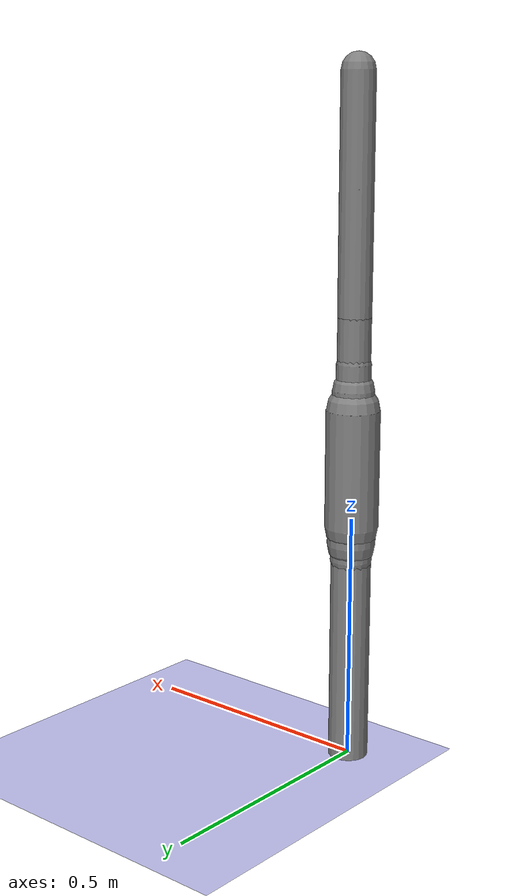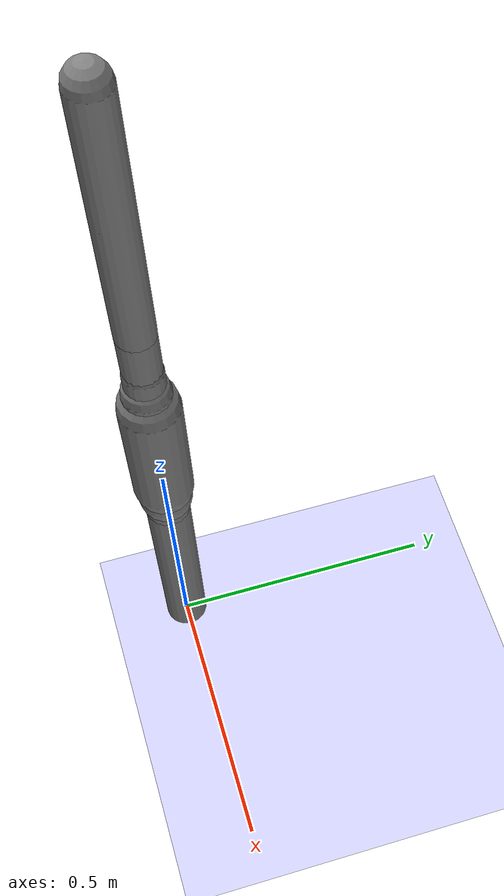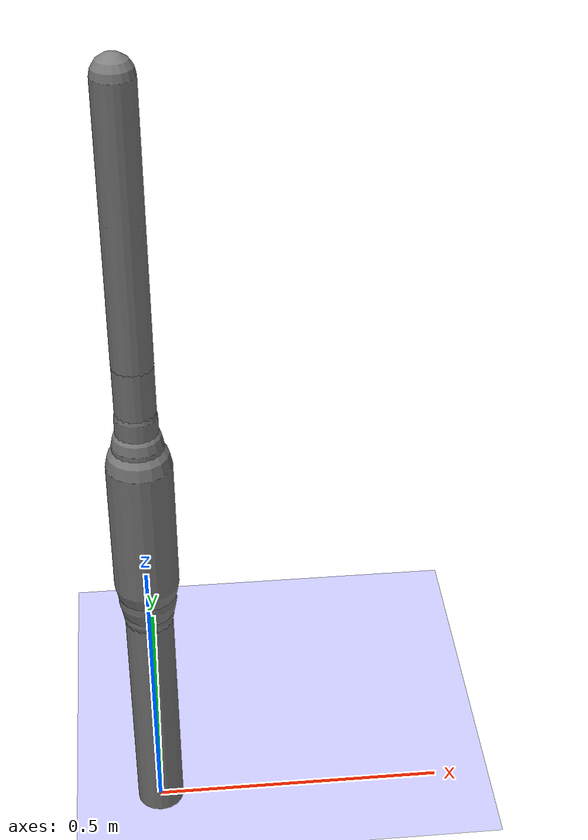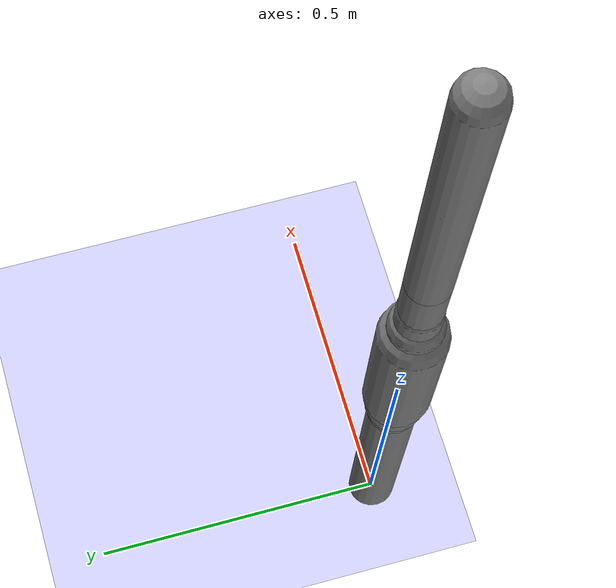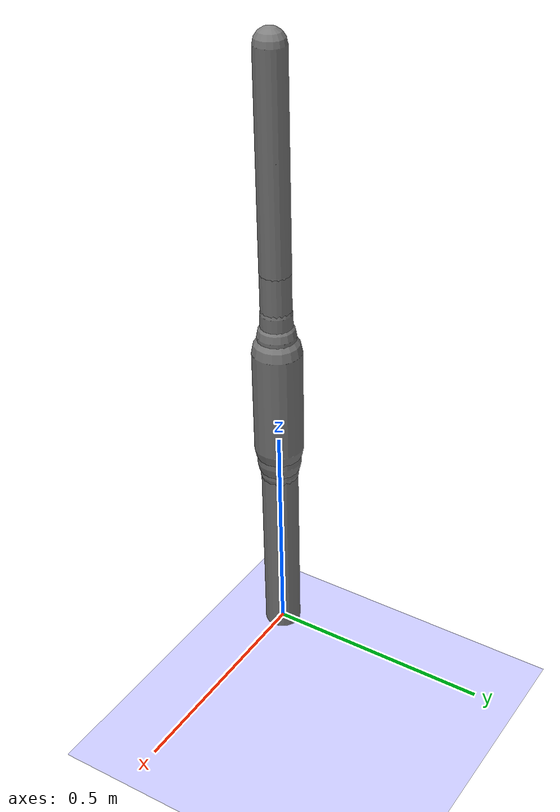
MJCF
<?xml version='1.0' encoding='UTF-8'?>
<mujoco model="robot_model">
  <worldbody>
    <light name="light" pos="0 -3 10" dir="0 0.5 -1" diffuse=".8 .8 .8" specular="0.1 0.1 0.1"/>
    <geom name="floor" type="plane" size="10.0 10.0 0.1" pos="0 0 0" rgba="0.8 0.8 1 1" contype="2" conaffinity="1"/>
    <body name="limb0" pos="0 0 0">
      <geom type="capsule" fromto="0 0 0 0 0 0.4770158134288512" size="0.04" density="1061.5522445288605" contype="1" conaffinity="2"/>
      <site type="sphere" size="0.01" name="limb0_site0" pos="0 0 0.3084595094469689"/>
      <site type="sphere" size="0.01" name="limb0_site1" pos="0 0 0.449208727791045"/>
      <freejoint name="limb0_root"/>
      <body name="limb1" pos="0 0 0.3084595094469689">
        <geom type="capsule" fromto="0 0 0 0 0 0.2846224531913775" size="0.03131832098341427" density="609.1509837897896" contype="1" conaffinity="2"/>
        <site type="sphere" size="0.01" name="limb1_site0" pos="0 0 0.17757674034844145"/>
        <site type="sphere" size="0.01" name="limb1_site1" pos="0 0 0.10896429326740988"/>
        <site type="sphere" size="0.01" name="limb1_site2" pos="0 0 0.2734267965282888"/>
        <body name="limb2" pos="0 0 0.17757674034844145">
          <geom type="capsule" fromto="0 0 0 0 0 0.23683402956406574" size="0.053446835651351804" density="643.288328781525" contype="1" conaffinity="2"/>
          <joint name="joint_limb1_limb2_0" type="hinge" axis="0 1 0" range="-66.9652511213398 66.9652511213398" damping="5.0"/>
        </body>
        <body name="limb3" pos="0 0 0.10896429326740988">
          <geom type="capsule" fromto="0 0 0 0 0 0.3449366956007403" size="0.04182995516077146" density="888.638751137447" contype="1" conaffinity="2"/>
          <site type="sphere" size="0.01" name="limb3_site0" pos="0 0 0.34476469369601037"/>
          <site type="sphere" size="0.01" name="limb3_site1" pos="0 0 0.18667968598157583"/>
          <body name="limb4" pos="0 0 0.34476469369601037">
            <geom type="capsule" fromto="0 0 0 0 0 0.38689637571819735" size="0.03296585503229504" density="787.6117064878987" contype="1" conaffinity="2"/>
            <joint name="joint_limb3_limb4_0" type="hinge" axis="0 1 0" range="-97.60316524447805 97.60316524447805" damping="5.0"/>
          </body>
          <body name="limb5" pos="0 0 0.18667968598157583">
            <geom type="capsule" fromto="0 0 0 0 0 0.2102868528065015" size="0.03451406520881031" density="566.487314585425" contype="1" conaffinity="2"/>
            <joint name="joint_limb3_limb5_0" type="hinge" axis="0 1 0" range="-104.33705546165979 104.33705546165979" damping="5.0"/>
          </body>
          <joint name="joint_limb1_limb3_0" type="hinge" axis="0 1 0" range="-84.37282476408203 84.37282476408203" damping="5.0"/>
        </body>
        <body name="limb6" pos="0 0 0.2734267965282888">
          <geom type="capsule" fromto="0 0 0 0 0 0.4886525017141072" size="0.02730849030649112" density="1118.1587480940386" contype="1" conaffinity="2"/>
          <site type="sphere" size="0.01" name="limb6_site0" pos="0 0 0.2463649766257729"/>
          <site type="sphere" size="0.01" name="limb6_site1" pos="0 0 0.32372424667221855"/>
          <body name="limb7" pos="0 0 0.2463649766257729">
            <geom type="capsule" fromto="0 0 0 0 0 0.16494092092840446" size="0.026900847887020046" density="676.2773841479103" contype="1" conaffinity="2"/>
            <joint name="joint_limb6_limb7_0" type="hinge" axis="1 0 0" range="-42.15190616583611 42.15190616583611" damping="5.0"/>
          </body>
          <body name="limb8" pos="0 0 0.32372424667221855">
            <geom type="capsule" fromto="0 0 0 0 0 0.46069774576177897" size="0.0332704348730845" density="1124.59993360464" contype="1" conaffinity="2"/>
            <joint name="joint_limb6_limb8_0" type="hinge" axis="0 1 0" range="-82.9398742241018 82.9398742241018" damping="5.0"/>
          </body>
          <joint name="joint_limb1_limb6_0" type="hinge" axis="0 1 0" range="-80.38696577407528 80.38696577407528" damping="5.0"/>
        </body>
        <joint name="joint_limb0_limb1_0" type="hinge" axis="0 1 0" range="-89.53684670583189 89.53684670583189" damping="5.0"/>
      </body>
      <body name="limb9" pos="0 0 0.449208727791045">
        <geom type="capsule" fromto="0 0 0 0 0 0.12459660118477343" size="0.048030699364997174" density="1200.0" contype="1" conaffinity="2"/>
        <joint name="joint_limb0_limb9_0" type="hinge" axis="0 1 0" range="-46.186401585393725 46.186401585393725" damping="5.0"/>
      </body>
    </body>
  </worldbody>
  <actuator>
    <position name="position_actuator_joint_limb0_limb1_0" joint="joint_limb0_limb1_0" gear="1.1522482362826674" inheritrange="1" kp="10.0"/>
    <position name="position_actuator_joint_limb1_limb2_0" joint="joint_limb1_limb2_0" gear="1.0628172104046523" inheritrange="1" kp="10.0"/>
    <position name="position_actuator_joint_limb1_limb3_0" joint="joint_limb1_limb3_0" gear="2.0" inheritrange="1" kp="10.0"/>
    <position name="position_actuator_joint_limb3_limb4_0" joint="joint_limb3_limb4_0" gear="1.7459471619076385" inheritrange="1" kp="10.0"/>
    <position name="position_actuator_joint_limb3_limb5_0" joint="joint_limb3_limb5_0" gear="0.8532674758555913" inheritrange="1" kp="10.0"/>
    <position name="position_actuator_joint_limb1_limb6_0" joint="joint_limb1_limb6_0" gear="1.272740550353963" inheritrange="1" kp="10.0"/>
    <position name="position_actuator_joint_limb6_limb7_0" joint="joint_limb6_limb7_0" gear="1.5515760021784972" inheritrange="1" kp="10.0"/>
    <position name="position_actuator_joint_limb6_limb8_0" joint="joint_limb6_limb8_0" gear="1.8192611440742856" inheritrange="1" kp="10.0"/>
    <position name="position_actuator_joint_limb0_limb9_0" joint="joint_limb0_limb9_0" gear="0.5181521235082891" inheritrange="1" kp="10.0"/>
  </actuator>
</mujoco>
